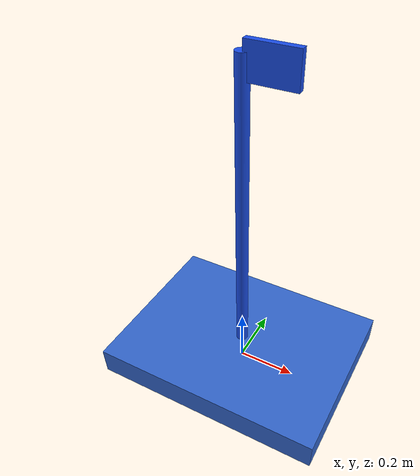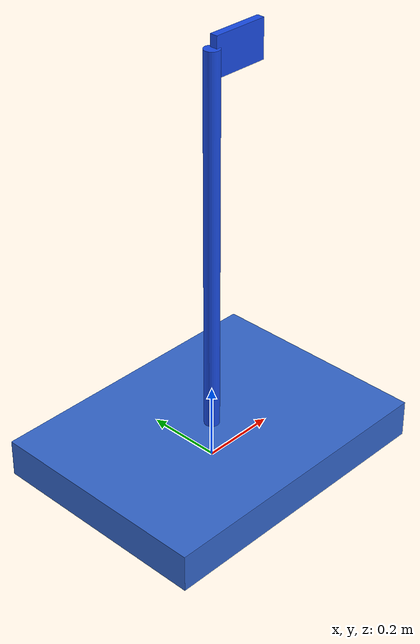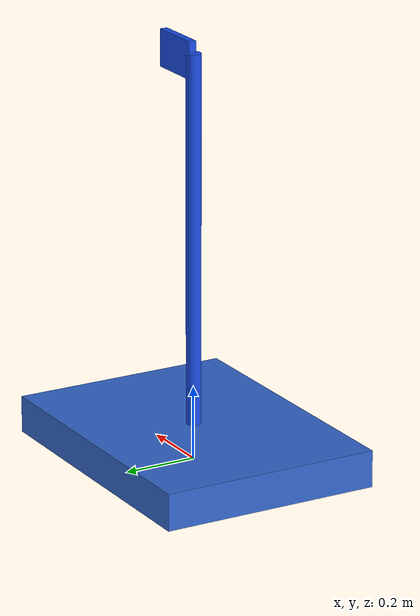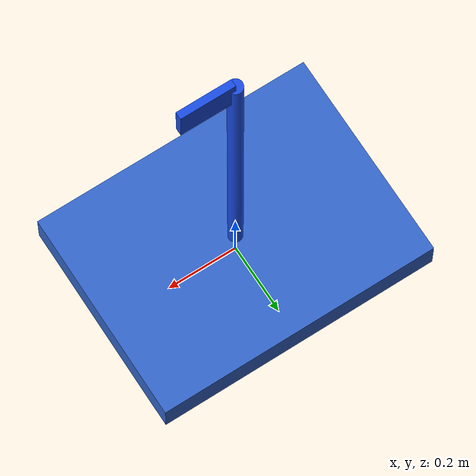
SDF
<?xml version="1.0"?>
<sdf version="1.6">
  <model name="delivery_station">
    <static>true</static>

    <!-- Drop zone platform -->
    <link name="platform">
      <pose>0 0 0.05 0 0 0</pose>
      <visual name="visual">
        <geometry><box><size>0.8 0.6 0.1</size></box></geometry>
        <material>
          <ambient>0.2 0.3 0.7 1</ambient>
          <diffuse>0.2 0.4 0.8 1</diffuse>
        </material>
      </visual>
      <collision name="collision">
        <geometry><box><size>0.8 0.6 0.1</size></box></geometry>
      </collision>
    </link>

    <!-- Blue marker pole -->
    <link name="marker_pole">
      <pose>0.0 0.0 0.6 0 0 0</pose>
      <visual name="visual">
        <geometry><cylinder><radius>0.02</radius><length>1.0</length></cylinder></geometry>
        <material>
          <ambient>0.1 0.2 0.8 1</ambient>
          <diffuse>0.1 0.3 0.9 1</diffuse>
        </material>
      </visual>
    </link>

    <!-- Blue marker flag -->
    <link name="marker_flag">
      <pose>0.08 0.0 1.08 0 0 0</pose>
      <visual name="visual">
        <geometry><box><size>0.15 0.02 0.1</size></box></geometry>
        <material>
          <ambient>0.1 0.2 0.8 1</ambient>
          <diffuse>0.1 0.3 0.9 1</diffuse>
        </material>
      </visual>
    </link>

  </model>
</sdf>
